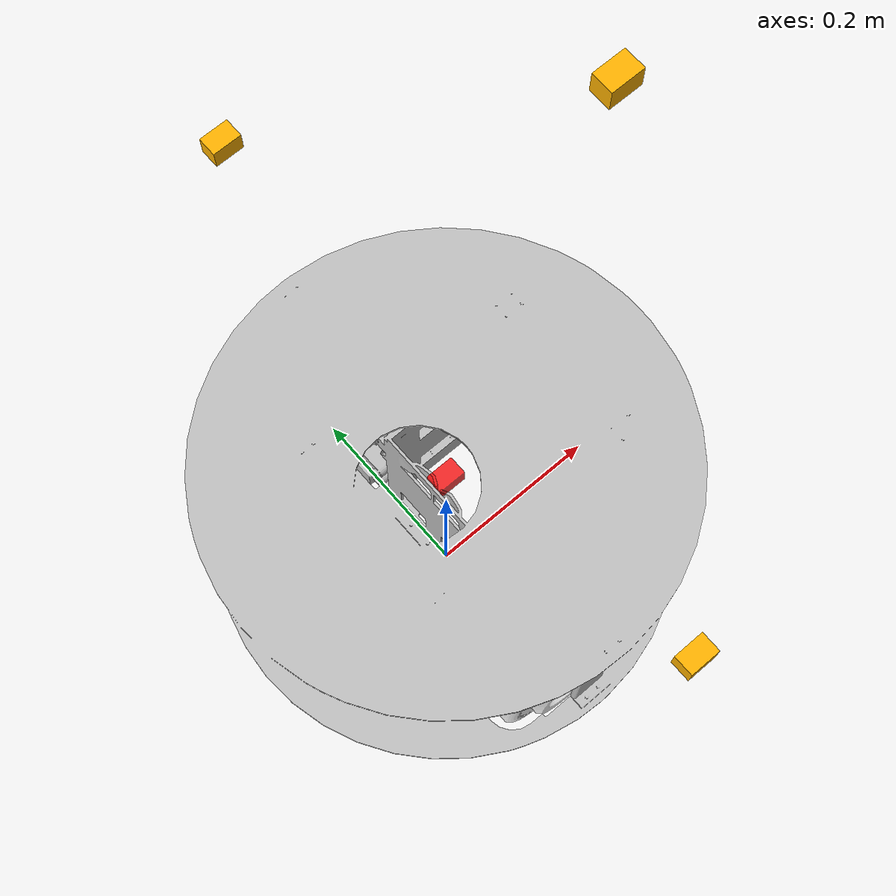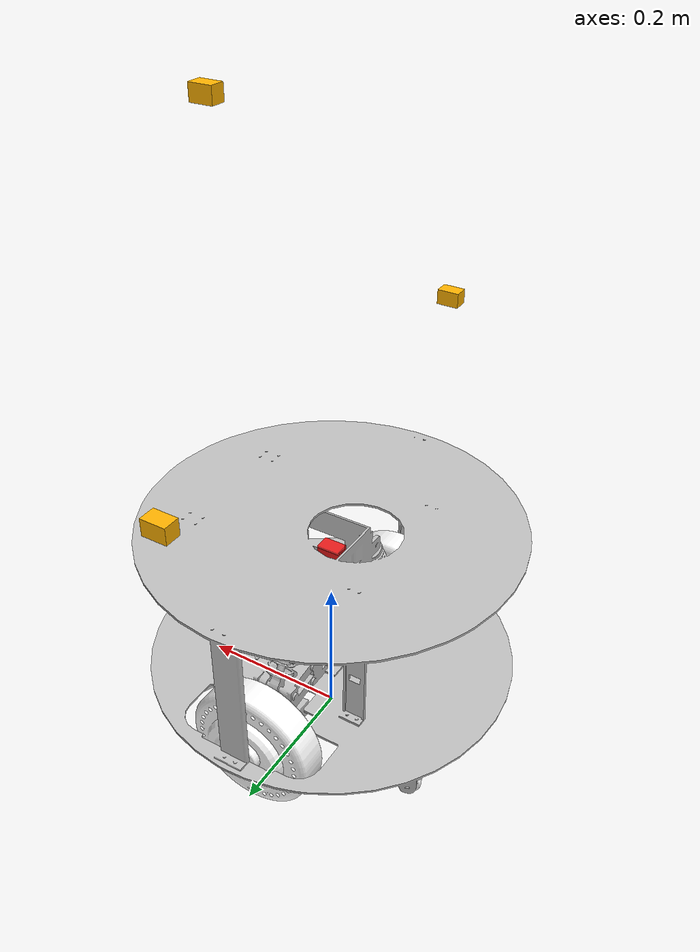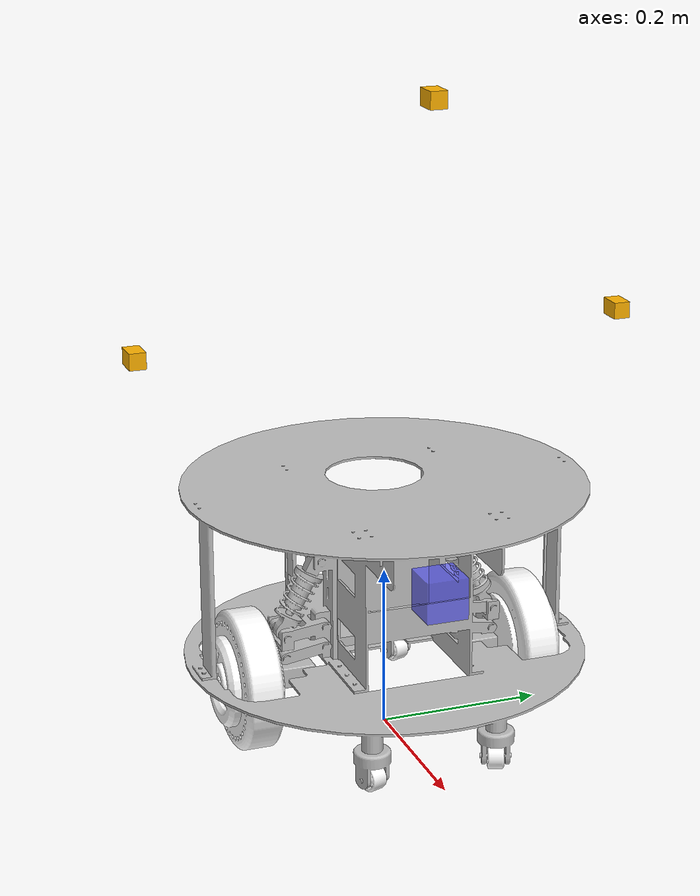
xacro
<?xml version="1.0" encoding="utf-8"?>
<robot xmlns:xacro="http://ros.org/wiki/xacro">
  <xacro:property name="M_PI" value="3.1415926535897931" />

  <link name="base_footprint"/>
    <joint name="base_joint" type="fixed">
      <origin xyz="0 0 0" rpy="0 0 0" />
      <parent link="base_footprint"/>
      <child link="base_link" />
    </joint>

  <link name="base_link">
    <inertial>
      <origin
        xyz="0.0046524 -1.2029E-05 0.18162"
        rpy="0 0 0" />
      <mass
        value="1.9421" />
      <inertia
        ixx="0.016249"
        ixy="-2.6352E-08"
        ixz="-0.00032505"
        iyy="0.019076"
        iyz="2.2146E-08"
        izz="0.031848" />
    </inertial>
    <visual>
      <origin
        xyz="0 0 0"
        rpy="0 0 0" />
      <geometry>
        <mesh
          filename="package://bobo_description/meshes/base_link.STL" />
      </geometry>
      <material
        name="">
        <color
          rgba="0.75294 0.75294 0.75294 1" />
      </material>
    </visual>
    <collision>
      <origin
        xyz="0 0 0"
        rpy="0 0 0" />
      <geometry>
        <mesh
          filename="package://bobo_description/meshes/base_link.STL" />
      </geometry>
    </collision>
  </link>
  <link
    name="wheel_right_link">
    <inertial>
      <origin
        xyz="-6.88469101173261E-10 0.00261076778922063 1.46539359813236E-09"
        rpy="0 0 0" />
      <mass
        value="1.13468316605061" />
      <inertia
        ixx="0.00214377737472316"
        ixy="1.35474255028293E-09"
        ixz="-1.11198689477431E-11"
        iyy="0.00371288553259231"
        iyz="-1.63769629423567E-09"
        izz="0.00214377737749942" />
    </inertial>
    <visual>
      <origin
        xyz="0 0 0"
        rpy="0 0 0" />
      <geometry>
        <mesh
          filename="package://bobo_description/meshes/wheel_right_link.STL" />
      </geometry>
      <material
        name="">
        <color
          rgba="1 1 1 1" />
      </material>
    </visual>
    <collision>
      <origin
        xyz="0 0 0"
        rpy="0 0 0" />
      <geometry>
        <mesh
          filename="package://bobo_description/meshes/wheel_right_link.STL" />
      </geometry>
    </collision>
  </link>
  <joint
    name="wheel_right_joint"
    type="continuous">
    <origin
      xyz="-0.0005 -0.17971 0.0854"
      rpy="0 0 0" />
    <parent
      link="base_link" />
    <child
      link="wheel_right_link" />
    <axis
      xyz="0 -1 0" />
  </joint>
  <link
    name="wheel_left_link">
    <inertial>
      <origin
        xyz="1.61277113885916E-09 -0.00261076778922059 1.42610201425697E-10"
        rpy="0 0 0" />
      <mass
        value="1.13468316605061" />
      <inertia
        ixx="0.00214377738646834"
        ixy="2.09699277269092E-09"
        ixz="-4.27898719562988E-12"
        iyy="0.00371288553259229"
        iyz="-3.46407025976004E-10"
        izz="0.00214377736575422" />
    </inertial>
    <visual>
      <origin
        xyz="0 0 0"
        rpy="0 0 0" />
      <geometry>
        <mesh
          filename="package://bobo_description/meshes/wheel_left_link.STL" />
      </geometry>
      <material
        name="">
        <color
          rgba="1 1 1 1" />
      </material>
    </visual>
    <collision>
      <origin
        xyz="0 0 0"
        rpy="0 0 0" />
      <geometry>
        <mesh
          filename="package://bobo_description/meshes/wheel_left_link.STL" />
      </geometry>
    </collision>
  </link>
  <joint
    name="wheel_left_joint"
    type="continuous">
    <origin
      xyz="-0.0005 0.17971 0.0854"
      rpy="0 0 0" />
    <parent
      link="base_link" />
    <child
      link="wheel_left_link" />
    <axis
      xyz="0 -1 0" />
  </joint>
  <link
    name="caster_front_right_link">
    <inertial>
      <origin
        xyz="-1.38777878078145E-17 -1.38777878078145E-17 -2.77555756156289E-17"
        rpy="0 0 0" />
      <mass
        value="0.0103871549572359" />
      <inertia
        ixx="9.76068238842766E-07"
        ixy="4.37487850150777E-08"
        ixz="4.36668756326797E-23"
        iyy="1.47229853084168E-06"
        iyz="5.40669622917979E-22"
        izz="9.72240768629191E-07" />
    </inertial>
    <visual>
      <origin
        xyz="0 0 0"
        rpy="0 0 0" />
      <geometry>
        <mesh
          filename="package://bobo_description/meshes/caster_front_right_link.STL" />
      </geometry>
      <material
        name="">
        <color
          rgba="1 1 1 1" />
      </material>
    </visual>
    <collision>
      <origin
        xyz="0 0 0"
        rpy="0 0 0" />
      <geometry>
        <mesh
          filename="package://bobo_description/meshes/caster_front_right_link.STL" />
      </geometry>
    </collision>
  </link>
  <joint
    name="caster_front_right_joint"
    type="continuous">
    <origin
      xyz="0.16676 -0.077762 0.016"
      rpy="0 0 0.43633" />
    <parent
      link="base_link" />
    <child
      link="caster_front_right_link" />
    <axis
      xyz="-0.087156 -0.99619 0" />
  </joint>
  <link
    name="caster_front_left_link">
    <inertial>
      <origin
        xyz="-1.38777878078145E-17 -5.55111512312578E-17 0"
        rpy="0 0 0" />
      <mass
        value="0.0103871549572359" />
      <inertia
        ixx="9.76068447320134E-07"
        ixy="-4.37499673489831E-08"
        ixz="3.49242855259726E-23"
        iyy="1.47229832236431E-06"
        iyz="-6.51906793689185E-22"
        izz="9.72240768629191E-07" />
    </inertial>
    <visual>
      <origin
        xyz="0 0 0"
        rpy="0 0 0" />
      <geometry>
        <mesh
          filename="package://bobo_description/meshes/caster_front_left_link.STL" />
      </geometry>
      <material
        name="">
        <color
          rgba="1 1 1 1" />
      </material>
    </visual>
    <collision>
      <origin
        xyz="0 0 0"
        rpy="0 0 0" />
      <geometry>
        <mesh
          filename="package://bobo_description/meshes/caster_front_left_link.STL" />
      </geometry>
    </collision>
  </link>
  <joint
    name="caster_front_left_joint"
    type="continuous">
    <origin
      xyz="0.16676 0.077762 0.016"
      rpy="0 0 -0.43633" />
    <parent
      link="base_link" />
    <child
      link="caster_front_left_link" />
    <axis
      xyz="0.087156 -0.99619 0" />
  </joint>
  <link
    name="caster_back_left_link">
    <inertial>
      <origin
        xyz="0 0 0"
        rpy="0 0 0" />
      <mass
        value="0.0103871549572358" />
      <inertia
        ixx="9.76068415792723E-07"
        ixy="4.37497885481657E-08"
        ixz="-3.74882476298782E-14"
        iyy="1.47229835389171E-06"
        iyz="-4.28492630568062E-13"
        izz="9.72240768629189E-07" />
    </inertial>
    <visual>
      <origin
        xyz="0 0 0"
        rpy="0 0 0" />
      <geometry>
        <mesh
          filename="package://bobo_description/meshes/caster_back_left_link.STL" />
      </geometry>
      <material
        name="">
        <color
          rgba="1 1 1 1" />
      </material>
    </visual>
    <collision>
      <origin
        xyz="0 0 0"
        rpy="0 0 0" />
      <geometry>
        <mesh
          filename="package://bobo_description/meshes/caster_back_left_link.STL" />
      </geometry>
    </collision>
  </link>
  <joint
    name="caster_back_left_joint"
    type="continuous">
    <origin
      xyz="-0.16676 0.077762 0.016"
      rpy="0 0 0.43633" />
    <parent
      link="base_link" />
    <child
      link="caster_back_left_link" />
    <axis
      xyz="-0.087156 -0.99619 0" />
  </joint>
  <link
    name="caster_back_right_link">
    <inertial>
      <origin
        xyz="-5.55111512312578E-17 0 2.77555756156289E-17"
        rpy="0 0 0" />
      <mass
        value="0.0103871549572359" />
      <inertia
        ixx="9.76068447320135E-07"
        ixy="-4.37499673489848E-08"
        ixz="4.3623233005725E-23"
        iyy="1.47229832236431E-06"
        iyz="-5.74330631173444E-22"
        izz="9.72240768629192E-07" />
    </inertial>
    <visual>
      <origin
        xyz="0 0 0"
        rpy="0 0 0" />
      <geometry>
        <mesh
          filename="package://bobo_description/meshes/caster_back_right_link.STL" />
      </geometry>
      <material
        name="">
        <color
          rgba="1 1 1 1" />
      </material>
    </visual>
    <collision>
      <origin
        xyz="0 0 0"
        rpy="0 0 0" />
      <geometry>
        <mesh
          filename="package://bobo_description/meshes/caster_back_right_link.STL" />
      </geometry>
    </collision>
  </link>
  <joint
    name="caster_back_right_joint"
    type="continuous">
    <origin
      xyz="-0.16676 -0.077762 0.016"
      rpy="0 0 -0.43633" />
    <parent
      link="base_link" />
    <child
      link="caster_back_right_link" />
    <axis
      xyz="0.087156 -0.99619 0" />
  </joint>

  <!-- ROM ADD -->
  <!-- LASER -->
  <joint name="laser_joint" type="fixed">
      <parent link="base_link"/>
      <child link="laser_link"/>
      <origin xyz="0.18 0 0.24" rpy="3.1415926 0 0"/>
  </joint>

  <link name="laser_link">
      <visual>
        <origin xyz="0 0 0.0" rpy="0 0 0"/>
        <geometry>
          <box size="0.05 0.05 0.05"/>
        </geometry>
        <material name="grey_blue"/>
      </visual>

      <collision>
        <origin xyz="0.015 0 -0.0065" rpy="0 0 0"/>
        <geometry>
          <cylinder length="0.0315" radius="0.055"/>
        </geometry>
      </collision>

      <inertial>
        <mass value="0.114" />
        <origin xyz="0 0 0" />
        <inertia ixx="0.001" ixy="0.0" ixz="0.0"
                 iyy="0.001" iyz="0.0"
                 izz="0.001" />
      </inertial>
    </link>
  <!-- IMU -->
  <joint name="imu_joint" type="fixed">
      <parent link="base_link"/>
      <child link="imu_link"/>
      <origin xyz="0 0 0.268" rpy="0 0 0"/>
  </joint>

  <link name="imu_link">
      <visual>
        <origin xyz="0 0 0.0" rpy="0 0 0"/>
        <geometry>
          <box size="0.03 0.02 0.02"/>
        </geometry>
        <material name="red"/>
      </visual>
  </link>
  <!-- 3D CAM_Left -->
  <joint name="cam3d_left_joint" type="fixed">
      <parent link="base_link"/>
      <child link="cam3d_left_link"/>
      <origin xyz="0 0.3 0.5" rpy="0 0 0"/>
  </joint>

  <link name="cam3d_left_link">
      <visual>
        <origin xyz="0 0 0.0" rpy="0 0 0"/>
        <geometry>
          <box size="0.03 0.02 0.02"/>
        </geometry>
        <material name="orange"/>
      </visual>
  </link>

  <!-- 3D CAM_Right -->
  <joint name="cam3d_right_joint" type="fixed">
      <parent link="base_link"/>
      <child link="cam3d_right_link"/>
      <origin xyz="0 -0.3 0.5" rpy="0 0 0"/>
  </joint>
  <link name="cam3d_right_link">
      <visual>
        <origin xyz="0 0 0.0" rpy="0 0 0"/>
        <geometry>
          <box size="0.03 0.02 0.02"/>
        </geometry>
        <material name="orange"/>
      </visual>
  </link>

  <!-- 3D CAM_Top -->
  <joint name="cam3d_top_joint" type="fixed">
      <parent link="base_link"/>
      <child link="cam3d_top_link"/>
      <origin xyz="0.15 0 0.8" rpy="0 0 0"/>
  </joint>

  <link name="cam3d_top_link">
      <visual>
        <origin xyz="0 0 0.0" rpy="0 0 0"/>
        <geometry>
          <box size="0.03 0.02 0.02"/>
        </geometry>
        <material name="orange"/>
      </visual>
  </link>
  <!-- materials colors for rviz  -->
  <material name="white">
    <color rgba="1 1 1 0.8"/>
  </material>

  <material name="grey">
    <color rgba="0.5 0.5 0.5 1"/>
  </material>

  <material name="light_grey">
    <color rgba="0.6 0.6 0.6 0.7"/>
  </material>

  <material name="dark_grey">
    <color rgba="0.3 0.3 0.3 0.7"/>
  </material>

  <material name="black">
    <color rgba="0.1 0.1 0.1 0.8"/>
  </material>

  <material name="red">
    <color rgba="1 0 0 0.8"/>
  </material>

  <material name="green">
    <color rgba="0.0 0.8 0.0 1"/>
  </material>

  <material name="blue">
    <color rgba="0.0 0.0 1.0 1"/>
  </material>

  <material name="grey_blue">
    <color rgba="0.4 0.4 1.0 0.8"/>
  </material>

  <material name="orange">
    <color rgba="1.0 0.7 0.0 1"/>
  </material>
  <!-- ROM END -->
</robot>
